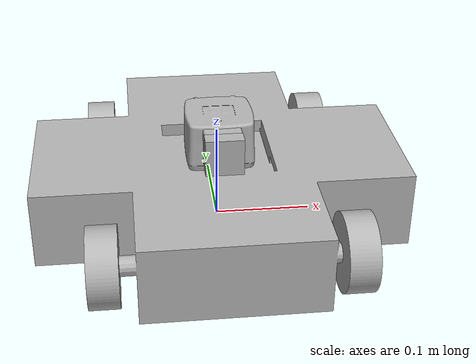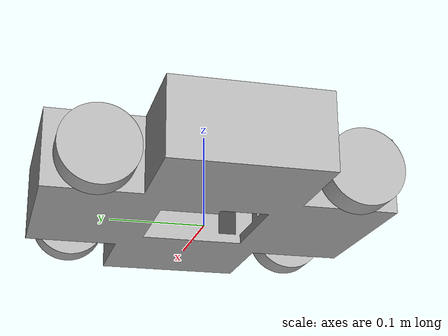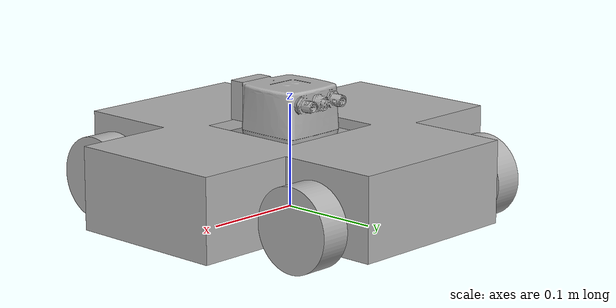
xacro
<?xml version="1.0" ?>
<robot name="pnf_agv" xmlns:xacro="http://www.ros.org/wiki/xacro">

<xacro:include filename="$(find pnf_agv_description)/urdf/materials.xacro" />
<xacro:include filename="$(find pnf_agv_description)/urdf/pnf_agv.trans" />
<xacro:include filename="$(find pnf_agv_description)/urdf/pnf_agv.gazebo" />
<link name="base_link">
  <inertial>
    <origin xyz="1.4822455483199973e-05 -0.00035296021677234593 0.040337564482692406" rpy="0 0 0"/>
    <mass value="26.111655948076812"/>
    <inertia ixx="0.307733" iyy="0.329895" izz="0.595999" ixy="1.9e-05" iyz="0.000543" ixz="-2.3e-05"/>
  </inertial>
  <visual>
    <origin xyz="0 0 0" rpy="0 0 0"/>
    <geometry>
      <mesh filename="package://pnf_agv_description/meshes/base_link.stl" scale="0.001 0.001 0.001"/>
    </geometry>
    <material name="silver"/>
  </visual>
  <collision>
    <origin xyz="0 0 0" rpy="0 0 0"/>
    <geometry>
      <mesh filename="package://pnf_agv_description/meshes/base_link.stl" scale="0.001 0.001 0.001"/>
    </geometry>
  </collision>
</link>

<link name="front_left_tyre_1">
  <inertial>
    <origin xyz="-0.01110924369747926 3.608224830031759e-16 -3.469446951953614e-17" rpy="0 0 0"/>
    <mass value="1.1738875109403615"/>
    <inertia ixx="0.000947" iyy="0.00056" izz="0.00056" ixy="-0.0" iyz="0.0" ixz="0.0"/>
  </inertial>
  <visual>
    <origin xyz="0.11 -0.13 -0.03" rpy="0 0 0"/>
    <geometry>
      <mesh filename="package://pnf_agv_description/meshes/front_left_tyre_1.stl" scale="0.001 0.001 0.001"/>
    </geometry>
    <material name="silver"/>
  </visual>
  <collision>
    <origin xyz="0.11 -0.13 -0.03" rpy="0 0 0"/>
    <geometry>
      <mesh filename="package://pnf_agv_description/meshes/front_left_tyre_1.stl" scale="0.001 0.001 0.001"/>
    </geometry>
  </collision>
</link>

<link name="front_right_tyre_1">
  <inertial>
    <origin xyz="0.01110924369747883 3.0531133177191805e-16 -3.0184188481996443e-16" rpy="0 0 0"/>
    <mass value="1.1738875109403615"/>
    <inertia ixx="0.000947" iyy="0.00056" izz="0.00056" ixy="-0.0" iyz="-0.0" ixz="-0.0"/>
  </inertial>
  <visual>
    <origin xyz="-0.11 -0.13 -0.03" rpy="0 0 0"/>
    <geometry>
      <mesh filename="package://pnf_agv_description/meshes/front_right_tyre_1.stl" scale="0.001 0.001 0.001"/>
    </geometry>
    <material name="silver"/>
  </visual>
  <collision>
    <origin xyz="-0.11 -0.13 -0.03" rpy="0 0 0"/>
    <geometry>
      <mesh filename="package://pnf_agv_description/meshes/front_right_tyre_1.stl" scale="0.001 0.001 0.001"/>
    </geometry>
  </collision>
</link>

<link name="back_left_tyre_1">
  <inertial>
    <origin xyz="-0.011109243697479274 -1.1102230246251565e-16 -8.673617379884035e-17" rpy="0 0 0"/>
    <mass value="1.1738875109403615"/>
    <inertia ixx="0.000947" iyy="0.00056" izz="0.00056" ixy="-0.0" iyz="0.0" ixz="0.0"/>
  </inertial>
  <visual>
    <origin xyz="0.11 0.13 -0.03" rpy="0 0 0"/>
    <geometry>
      <mesh filename="package://pnf_agv_description/meshes/back_left_tyre_1.stl" scale="0.001 0.001 0.001"/>
    </geometry>
    <material name="silver"/>
  </visual>
  <collision>
    <origin xyz="0.11 0.13 -0.03" rpy="0 0 0"/>
    <geometry>
      <mesh filename="package://pnf_agv_description/meshes/back_left_tyre_1.stl" scale="0.001 0.001 0.001"/>
    </geometry>
  </collision>
</link>

<link name="back_right_tyre_1">
  <inertial>
    <origin xyz="0.01110924369747908 -3.3306690738754696e-16 3.8163916471489756e-17" rpy="0 0 0"/>
    <mass value="1.1738875109403615"/>
    <inertia ixx="0.000947" iyy="0.00056" izz="0.00056" ixy="0.0" iyz="0.0" ixz="0.0"/>
  </inertial>
  <visual>
    <origin xyz="-0.11 0.13 -0.03" rpy="0 0 0"/>
    <geometry>
      <mesh filename="package://pnf_agv_description/meshes/back_right_tyre_1.stl" scale="0.001 0.001 0.001"/>
    </geometry>
    <material name="silver"/>
  </visual>
  <collision>
    <origin xyz="-0.11 0.13 -0.03" rpy="0 0 0"/>
    <geometry>
      <mesh filename="package://pnf_agv_description/meshes/back_right_tyre_1.stl" scale="0.001 0.001 0.001"/>
    </geometry>
  </collision>
</link>

<link name="pgv_sensor_1">
  <inertial>
    <origin xyz="-8.421011784280792e-07 0.044135155660923665 -0.022313368834936925" rpy="0 0 0"/>
    <mass value="1.9228814147546442"/>
    <inertia ixx="0.001246" iyy="0.001105" izz="0.001572" ixy="0.0" iyz="-6e-06" ixz="0.0"/>
  </inertial>
  <visual>
    <origin xyz="-0.002126 0.04285 -0.1185" rpy="0 0 0"/>
    <geometry>
      <mesh filename="package://pnf_agv_description/meshes/pgv_sensor_1.stl" scale="0.001 0.001 0.001"/>
    </geometry>
    <material name="silver"/>
  </visual>
  <collision>
    <origin xyz="-0.002126 0.04285 -0.1185" rpy="0 0 0"/>
    <geometry>
      <mesh filename="package://pnf_agv_description/meshes/pgv_sensor_1.stl" scale="0.001 0.001 0.001"/>
    </geometry>
  </collision>
</link>

<joint name="front_left_joint" type="continuous">
  <origin xyz="-0.11 0.13 0.03" rpy="0 0 0"/>
  <parent link="base_link"/>
  <child link="front_left_tyre_1"/>
  <axis xyz="-1.0 0.0 -0.0"/>
</joint>

<joint name="front_right_joint" type="continuous">
  <origin xyz="0.11 0.13 0.03" rpy="0 0 0"/>
  <parent link="base_link"/>
  <child link="front_right_tyre_1"/>
  <axis xyz="1.0 -0.0 0.0"/>
</joint>

<joint name="back_left_joint" type="continuous">
  <origin xyz="-0.11 -0.13 0.03" rpy="0 0 0"/>
  <parent link="base_link"/>
  <child link="back_left_tyre_1"/>
  <axis xyz="-1.0 0.0 -0.0"/>
</joint>

<joint name="back_right_joint" type="continuous">
  <origin xyz="0.11 -0.13 0.03" rpy="0 0 0"/>
  <parent link="base_link"/>
  <child link="back_right_tyre_1"/>
  <axis xyz="1.0 -0.0 0.0"/>
</joint>

<joint name="pgv_joint" type="fixed">
  <origin xyz="0.002126 -0.04285 0.1185" rpy="0 0 0"/>
  <parent link="base_link"/>
  <child link="pgv_sensor_1"/>
</joint>

</robot>

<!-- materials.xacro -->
<robot name="pnf_agv" xmlns:xacro="http://www.ros.org/wiki/xacro" >

<material name="silver">
  <color rgba="0.700 0.700 0.700 1.000"/>
</material>

</robot>

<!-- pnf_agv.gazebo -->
<robot name="pnf_agv" xmlns:xacro="http://www.ros.org/wiki/xacro" >

<xacro:property name="body_color" value="Gazebo/Silver" />

<gazebo>
  <plugin name="object_controller" filename="libgazebo_ros_planar_move.so">
    <commandTopic>cmd_vel</commandTopic>
    <odometryTopic>odom</odometryTopic>
    <odometryFrame>odom</odometryFrame>
    <odometryRate>20.0</odometryRate>
    <robotBaseFrame>base_link</robotBaseFrame>
  </plugin>
</gazebo>
<gazebo reference="base_link">
  <material>${body_color}</material>
  <mu1>0.2</mu1>
  <mu2>0.2</mu2>
  <selfCollide>true</selfCollide>
  <gravity>true</gravity>
</gazebo>

<gazebo reference="front_left_tyre_1">
  <material>${body_color}</material>
  <mu1>0.2</mu1>
  <mu2>0.2</mu2>
  <selfCollide>true</selfCollide>
</gazebo>

<gazebo reference="front_right_tyre_1">
  <material>${body_color}</material>
  <mu1>0.2</mu1>
  <mu2>0.2</mu2>
  <selfCollide>true</selfCollide>
</gazebo>

<gazebo reference="back_left_tyre_1">
  <material>${body_color}</material>
  <mu1>0.2</mu1>
  <mu2>0.2</mu2>
  <selfCollide>true</selfCollide>
</gazebo>

<gazebo reference="back_right_tyre_1">
  <material>${body_color}</material>
  <mu1>0.2</mu1>
  <mu2>0.2</mu2>
  <selfCollide>true</selfCollide>
</gazebo>

<gazebo reference="pgv_sensor_1">
  <sensor type="camera" name="camera1">
    <update_rate>30.0</update_rate>
    <camera name="head">
      <horizontal_fov>1.3962634</horizontal_fov>
      <image>
        <width>800</width>
        <height>800</height>
        <format>R8G8B8</format>
      </image>
      <clip>
        <near>0.02</near>
        <far>300</far>
      </clip>
      <noise>
        <type>gaussian</type>
        <!-- Noise is sampled independently per pixel on each frame.
              That pixel's noise value is added to each of its color
              channels, which at that point lie in the range [0,1]. -->
        <mean>0.0</mean>
        <stddev>0.007</stddev>
      </noise>
    </camera>
    <plugin name="camera_controller" filename="libgazebo_ros_camera.so">
      <alwaysOn>true</alwaysOn>
      <updateRate>0.0</updateRate>
      <cameraName>rrbot/camera1</cameraName>
      <imageTopicName>image_raw</imageTopicName>
      <cameraInfoTopicName>camera_info</cameraInfoTopicName>
      <frameName>camera_link</frameName>
      <hackBaseline>0.07</hackBaseline>
      <distortionK1>0.0</distortionK1>
      <distortionK2>0.0</distortionK2>
      <distortionK3>0.0</distortionK3>
      <distortionT1>0.0</distortionT1>
      <distortionT2>0.0</distortionT2>
    </plugin>
  </sensor>
  <material>${body_color}</material>
  <mu1>0.2</mu1>
  <mu2>0.2</mu2>
  <selfCollide>true</selfCollide>
</gazebo>

</robot>
